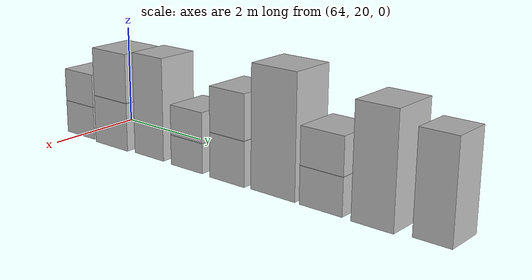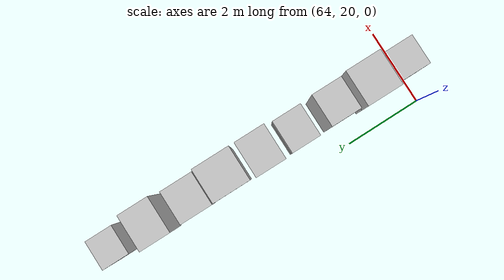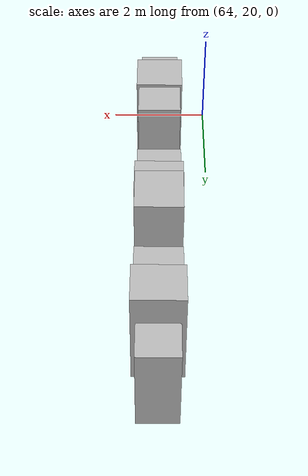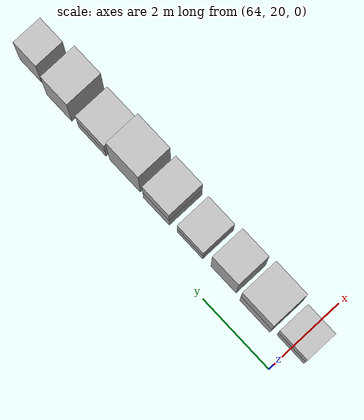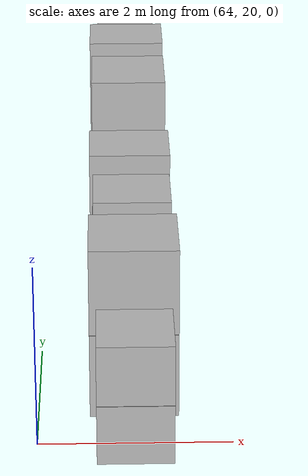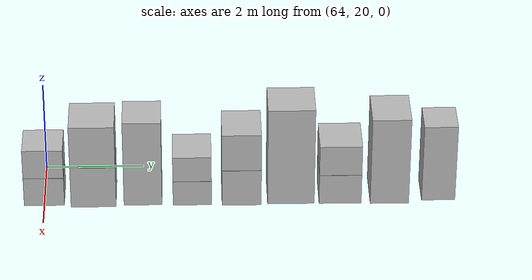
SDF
<sdf version="1.5">
 <world name="default">
  <model name="ground_plane">
   <static>true</static>
   <link name="link">
    <collision name="collision">
     <geometry><plane><normal>0 0 1</normal><size>250 250</size></plane></geometry>
     <surface><friction><ode><mu>1</mu><mu2>1</mu2></ode></friction></surface>
    </collision>
    <visual name="grass">
     <cast_shadows>false</cast_shadows>
     <geometry><mesh><uri>file://grass_plane/meshes/grass_plane.dae</uri></mesh></geometry>
    </visual>
   </link>
  </model>
  <model name="Cardboard_box_730">
   <link name="link_0">
    <pose>65 20 0 0 0 0</pose>
    <inertial>
     <mass>1</mass>
     <inertia>
      <ixx>0.166667</ixx>
      <ixy>0</ixy>
      <ixz>0</ixz>
      <iyy>0.166667</iyy>
      <iyz>0</iyz>
      <izz>0.166667</izz>
     </inertia>
    </inertial>
    <collision name="collision">
     <geometry>
      <mesh>
       <uri>model://Cardboard_box/meshes/cardboard_box.dae</uri>
       <scale>1.97279986113 2.05478144781 1.66027702567</scale>
      </mesh>
     </geometry>
    </collision>
    <visual name="visual">
     <geometry>
      <mesh>
       <uri>model://Cardboard_box/meshes/cardboard_box.dae</uri>
       <scale>1.97279986113 2.05478144781 1.66027702567</scale>
      </mesh>
     </geometry>
    </visual>
   </link>
   <static>1</static>
  </model>
  <model name="Cardboard_box_top_730">
   <link name="link_0">
    <pose>65 20 0.664110810267 0 0 0</pose>
    <inertial>
     <mass>1</mass>
     <inertia>
      <ixx>0.166667</ixx>
      <ixy>0</ixy>
      <ixz>0</ixz>
      <iyy>0.166667</iyy>
      <iyz>0</iyz>
      <izz>0.166667</izz>
     </inertia>
    </inertial>
    <collision name="collision">
     <geometry>
      <mesh>
       <uri>model://Cardboard_box/meshes/cardboard_box.dae</uri>
       <scale>1.97279986113 2.05478144781 1.66027702567</scale>
      </mesh>
     </geometry>
    </collision>
    <visual name="visual">
     <geometry>
      <mesh>
       <uri>model://Cardboard_box/meshes/cardboard_box.dae</uri>
       <scale>1.97279986113 2.05478144781 1.66027702567</scale>
      </mesh>
     </geometry>
    </visual>
   </link>
   <static>1</static>
  </model>
  <model name="Cardboard_box_731">
   <link name="link_0">
    <pose>65 21 0 0 0 0</pose>
    <inertial>
     <mass>1</mass>
     <inertia>
      <ixx>0.166667</ixx>
      <ixy>0</ixy>
      <ixz>0</ixz>
      <iyy>0.166667</iyy>
      <iyz>0</iyz>
      <izz>0.166667</izz>
     </inertia>
    </inertial>
    <collision name="collision">
     <geometry>
      <mesh>
       <uri>model://Cardboard_box/meshes/cardboard_box.dae</uri>
       <scale>2.34137380647 2.30090081139 2.39360998895</scale>
      </mesh>
     </geometry>
    </collision>
    <visual name="visual">
     <geometry>
      <mesh>
       <uri>model://Cardboard_box/meshes/cardboard_box.dae</uri>
       <scale>2.34137380647 2.30090081139 2.39360998895</scale>
      </mesh>
     </geometry>
    </visual>
   </link>
   <static>1</static>
  </model>
  <model name="Cardboard_box_top_731">
   <link name="link_0">
    <pose>65 21 0.957443995581 0 0 0</pose>
    <inertial>
     <mass>1</mass>
     <inertia>
      <ixx>0.166667</ixx>
      <ixy>0</ixy>
      <ixz>0</ixz>
      <iyy>0.166667</iyy>
      <iyz>0</iyz>
      <izz>0.166667</izz>
     </inertia>
    </inertial>
    <collision name="collision">
     <geometry>
      <mesh>
       <uri>model://Cardboard_box/meshes/cardboard_box.dae</uri>
       <scale>2.34137380647 2.30090081139 2.39360998895</scale>
      </mesh>
     </geometry>
    </collision>
    <visual name="visual">
     <geometry>
      <mesh>
       <uri>model://Cardboard_box/meshes/cardboard_box.dae</uri>
       <scale>2.34137380647 2.30090081139 2.39360998895</scale>
      </mesh>
     </geometry>
    </visual>
   </link>
   <static>1</static>
  </model>
  <model name="Cardboard_box_732">
   <link name="link_0">
    <pose>65 22 0 0 0 0</pose>
    <inertial>
     <mass>1</mass>
     <inertia>
      <ixx>0.166667</ixx>
      <ixy>0</ixy>
      <ixz>0</ixz>
      <iyy>0.166667</iyy>
      <iyz>0</iyz>
      <izz>0.166667</izz>
     </inertia>
    </inertial>
    <collision name="collision">
     <geometry>
      <mesh>
       <uri>model://Cardboard_box/meshes/cardboard_box.dae</uri>
       <scale>2.10141088879 1.94244840155 4.95496075286</scale>
      </mesh>
     </geometry>
    </collision>
    <visual name="visual">
     <geometry>
      <mesh>
       <uri>model://Cardboard_box/meshes/cardboard_box.dae</uri>
       <scale>2.10141088879 1.94244840155 4.95496075286</scale>
      </mesh>
     </geometry>
    </visual>
   </link>
   <static>1</static>
  </model>
  <model name="Cardboard_box_733">
   <link name="link_0">
    <pose>65 23 0 0 0 0</pose>
    <inertial>
     <mass>1</mass>
     <inertia>
      <ixx>0.166667</ixx>
      <ixy>0</ixy>
      <ixz>0</ixz>
      <iyy>0.166667</iyy>
      <iyz>0</iyz>
      <izz>0.166667</izz>
     </inertia>
    </inertial>
    <collision name="collision">
     <geometry>
      <mesh>
       <uri>model://Cardboard_box/meshes/cardboard_box.dae</uri>
       <scale>2.21283077804 1.96672872534 1.43931689832</scale>
      </mesh>
     </geometry>
    </collision>
    <visual name="visual">
     <geometry>
      <mesh>
       <uri>model://Cardboard_box/meshes/cardboard_box.dae</uri>
       <scale>2.21283077804 1.96672872534 1.43931689832</scale>
      </mesh>
     </geometry>
    </visual>
   </link>
   <static>1</static>
  </model>
  <model name="Cardboard_box_top_733">
   <link name="link_0">
    <pose>65 23 0.575726759328 0 0 0</pose>
    <inertial>
     <mass>1</mass>
     <inertia>
      <ixx>0.166667</ixx>
      <ixy>0</ixy>
      <ixz>0</ixz>
      <iyy>0.166667</iyy>
      <iyz>0</iyz>
      <izz>0.166667</izz>
     </inertia>
    </inertial>
    <collision name="collision">
     <geometry>
      <mesh>
       <uri>model://Cardboard_box/meshes/cardboard_box.dae</uri>
       <scale>2.21283077804 1.96672872534 1.43931689832</scale>
      </mesh>
     </geometry>
    </collision>
    <visual name="visual">
     <geometry>
      <mesh>
       <uri>model://Cardboard_box/meshes/cardboard_box.dae</uri>
       <scale>2.21283077804 1.96672872534 1.43931689832</scale>
      </mesh>
     </geometry>
    </visual>
   </link>
   <static>1</static>
  </model>
  <model name="Cardboard_box_734">
   <link name="link_0">
    <pose>65 24 0 0 0 0</pose>
    <inertial>
     <mass>1</mass>
     <inertia>
      <ixx>0.166667</ixx>
      <ixy>0</ixy>
      <ixz>0</ixz>
      <iyy>0.166667</iyy>
      <iyz>0</iyz>
      <izz>0.166667</izz>
     </inertia>
    </inertial>
    <collision name="collision">
     <geometry>
      <mesh>
       <uri>model://Cardboard_box/meshes/cardboard_box.dae</uri>
       <scale>2.35160520179 2.00444821686 2.10894218659</scale>
      </mesh>
     </geometry>
    </collision>
    <visual name="visual">
     <geometry>
      <mesh>
       <uri>model://Cardboard_box/meshes/cardboard_box.dae</uri>
       <scale>2.35160520179 2.00444821686 2.10894218659</scale>
      </mesh>
     </geometry>
    </visual>
   </link>
   <static>1</static>
  </model>
  <model name="Cardboard_box_top_734">
   <link name="link_0">
    <pose>65 24 0.843576874635 0 0 0</pose>
    <inertial>
     <mass>1</mass>
     <inertia>
      <ixx>0.166667</ixx>
      <ixy>0</ixy>
      <ixz>0</ixz>
      <iyy>0.166667</iyy>
      <iyz>0</iyz>
      <izz>0.166667</izz>
     </inertia>
    </inertial>
    <collision name="collision">
     <geometry>
      <mesh>
       <uri>model://Cardboard_box/meshes/cardboard_box.dae</uri>
       <scale>2.35160520179 2.00444821686 2.10894218659</scale>
      </mesh>
     </geometry>
    </collision>
    <visual name="visual">
     <geometry>
      <mesh>
       <uri>model://Cardboard_box/meshes/cardboard_box.dae</uri>
       <scale>2.35160520179 2.00444821686 2.10894218659</scale>
      </mesh>
     </geometry>
    </visual>
   </link>
   <static>1</static>
  </model>
  <model name="Cardboard_box_735">
   <link name="link_0">
    <pose>65 25 0 0 0 0</pose>
    <inertial>
     <mass>1</mass>
     <inertia>
      <ixx>0.166667</ixx>
      <ixy>0</ixy>
      <ixz>0</ixz>
      <iyy>0.166667</iyy>
      <iyz>0</iyz>
      <izz>0.166667</izz>
     </inertia>
    </inertial>
    <collision name="collision">
     <geometry>
      <mesh>
       <uri>model://Cardboard_box/meshes/cardboard_box.dae</uri>
       <scale>2.20092819045 2.39136629328 5.6274086852</scale>
      </mesh>
     </geometry>
    </collision>
    <visual name="visual">
     <geometry>
      <mesh>
       <uri>model://Cardboard_box/meshes/cardboard_box.dae</uri>
       <scale>2.20092819045 2.39136629328 5.6274086852</scale>
      </mesh>
     </geometry>
    </visual>
   </link>
   <static>1</static>
  </model>
  <model name="Cardboard_box_736">
   <link name="link_0">
    <pose>65 26 0 0 0 0</pose>
    <inertial>
     <mass>1</mass>
     <inertia>
      <ixx>0.166667</ixx>
      <ixy>0</ixy>
      <ixz>0</ixz>
      <iyy>0.166667</iyy>
      <iyz>0</iyz>
      <izz>0.166667</izz>
     </inertia>
    </inertial>
    <collision name="collision">
     <geometry>
      <mesh>
       <uri>model://Cardboard_box/meshes/cardboard_box.dae</uri>
       <scale>2.23991033048 2.15701592262 1.71107623016</scale>
      </mesh>
     </geometry>
    </collision>
    <visual name="visual">
     <geometry>
      <mesh>
       <uri>model://Cardboard_box/meshes/cardboard_box.dae</uri>
       <scale>2.23991033048 2.15701592262 1.71107623016</scale>
      </mesh>
     </geometry>
    </visual>
   </link>
   <static>1</static>
  </model>
  <model name="Cardboard_box_top_736">
   <link name="link_0">
    <pose>65 26 0.684430492063 0 0 0</pose>
    <inertial>
     <mass>1</mass>
     <inertia>
      <ixx>0.166667</ixx>
      <ixy>0</ixy>
      <ixz>0</ixz>
      <iyy>0.166667</iyy>
      <iyz>0</iyz>
      <izz>0.166667</izz>
     </inertia>
    </inertial>
    <collision name="collision">
     <geometry>
      <mesh>
       <uri>model://Cardboard_box/meshes/cardboard_box.dae</uri>
       <scale>2.23991033048 2.15701592262 1.71107623016</scale>
      </mesh>
     </geometry>
    </collision>
    <visual name="visual">
     <geometry>
      <mesh>
       <uri>model://Cardboard_box/meshes/cardboard_box.dae</uri>
       <scale>2.23991033048 2.15701592262 1.71107623016</scale>
      </mesh>
     </geometry>
    </visual>
   </link>
   <static>1</static>
  </model>
  <model name="Cardboard_box_737">
   <link name="link_0">
    <pose>65 27 0 0 0 0</pose>
    <inertial>
     <mass>1</mass>
     <inertia>
      <ixx>0.166667</ixx>
      <ixy>0</ixy>
      <ixz>0</ixz>
      <iyy>0.166667</iyy>
      <iyz>0</iyz>
      <izz>0.166667</izz>
     </inertia>
    </inertial>
    <collision name="collision">
     <geometry>
      <mesh>
       <uri>model://Cardboard_box/meshes/cardboard_box.dae</uri>
       <scale>2.35388235169 1.96857232158 5.03675444943</scale>
      </mesh>
     </geometry>
    </collision>
    <visual name="visual">
     <geometry>
      <mesh>
       <uri>model://Cardboard_box/meshes/cardboard_box.dae</uri>
       <scale>2.35388235169 1.96857232158 5.03675444943</scale>
      </mesh>
     </geometry>
    </visual>
   </link>
   <static>1</static>
  </model>
  <model name="Cardboard_box_738">
   <link name="link_0">
    <pose>65 28 0 0 0 0</pose>
    <inertial>
     <mass>1</mass>
     <inertia>
      <ixx>0.166667</ixx>
      <ixy>0</ixy>
      <ixz>0</ixz>
      <iyy>0.166667</iyy>
      <iyz>0</iyz>
      <izz>0.166667</izz>
     </inertia>
    </inertial>
    <collision name="collision">
     <geometry>
      <mesh>
       <uri>model://Cardboard_box/meshes/cardboard_box.dae</uri>
       <scale>1.87042157667 1.70999824616 4.43076448312</scale>
      </mesh>
     </geometry>
    </collision>
    <visual name="visual">
     <geometry>
      <mesh>
       <uri>model://Cardboard_box/meshes/cardboard_box.dae</uri>
       <scale>1.87042157667 1.70999824616 4.43076448312</scale>
      </mesh>
     </geometry>
    </visual>
   </link>
   <static>1</static>
  </model>
 </world>
</sdf>
